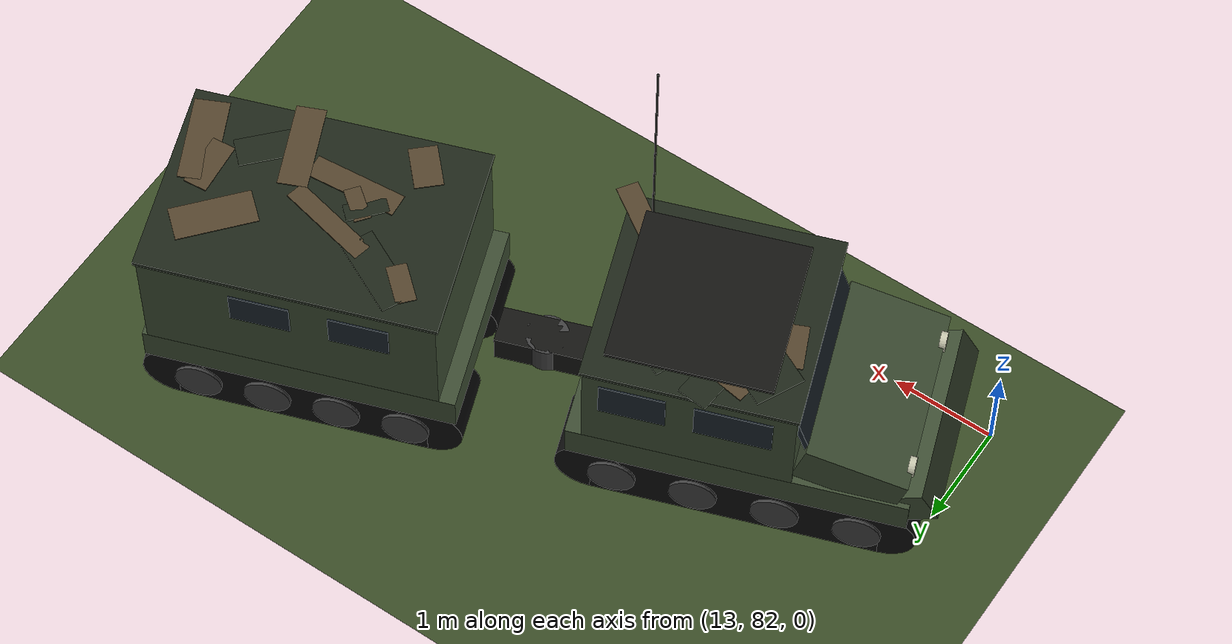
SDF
<sdf version="1.11">
 <world name="hive_base">
  <model name="ground_plane">
   <static>true</static>
   <link name="link">
    <collision name="collision">
     <geometry><plane><normal>0 0 1</normal><size>1000 1000</size></plane></geometry>
     <surface><friction><ode><mu>1.0</mu><mu2>1.0</mu2></ode></friction></surface>
    </collision>
    <visual name="visual">
     <geometry><plane><normal>0 0 1</normal><size>1000 1000</size></plane></geometry>
     <material>
      <ambient>0.23 0.3 0.15 1</ambient>
      <diffuse>0.23 0.3 0.15 1</diffuse>
      <specular>0.05 0.05 0.05 1</specular>
     </material>
    </visual>
   </link>
  </model>
  <model name="bv206_2">
   <static>true</static>
   <pose>16.657 83.844 0 0 0 -2.799</pose>
   <link name="link">
    <visual name="v1">
     <pose>2 -0.6 0.33 0 0 0</pose>
     <geometry><box><size>2.64 0.62 0.66</size></box></geometry>
     <material>
      <ambient>0.05 0.05 0.05 1</ambient>
      <diffuse>0.05 0.05 0.05 1</diffuse>
      <specular>0.05 0.05 0.05 1</specular>
     </material>
    </visual>
    <collision name="c1">
     <pose>2 -0.6 0.33 0 0 0</pose>
     <geometry><box><size>2.64 0.62 0.66</size></box></geometry>
    </collision>
    <visual name="v2">
     <pose>0.68 -0.6 0.33 1.571 0 0</pose>
     <geometry><cylinder><radius>0.33</radius><length>0.62</length></cylinder></geometry>
     <material>
      <ambient>0.05 0.05 0.05 1</ambient>
      <diffuse>0.05 0.05 0.05 1</diffuse>
      <specular>0.05 0.05 0.05 1</specular>
     </material>
    </visual>
    <collision name="c2">
     <pose>0.68 -0.6 0.33 1.571 0 0</pose>
     <geometry><cylinder><radius>0.33</radius><length>0.62</length></cylinder></geometry>
    </collision>
    <visual name="v3">
     <pose>3.32 -0.6 0.33 1.571 0 0</pose>
     <geometry><cylinder><radius>0.33</radius><length>0.62</length></cylinder></geometry>
     <material>
      <ambient>0.05 0.05 0.05 1</ambient>
      <diffuse>0.05 0.05 0.05 1</diffuse>
      <specular>0.05 0.05 0.05 1</specular>
     </material>
    </visual>
    <collision name="c3">
     <pose>3.32 -0.6 0.33 1.571 0 0</pose>
     <geometry><cylinder><radius>0.33</radius><length>0.62</length></cylinder></geometry>
    </collision>
    <visual name="v4">
     <pose>0.88 -0.92 0.3 1.571 0 0</pose>
     <geometry><cylinder><radius>0.22</radius><length>0.04</length></cylinder></geometry>
     <material>
      <ambient>0.25 0.25 0.25 1</ambient>
      <diffuse>0.25 0.25 0.25 1</diffuse>
      <specular>0.05 0.05 0.05 1</specular>
     </material>
    </visual>
    <visual name="v5">
     <pose>1.627 -0.92 0.3 1.571 0 0</pose>
     <geometry><cylinder><radius>0.22</radius><length>0.04</length></cylinder></geometry>
     <material>
      <ambient>0.25 0.25 0.25 1</ambient>
      <diffuse>0.25 0.25 0.25 1</diffuse>
      <specular>0.05 0.05 0.05 1</specular>
     </material>
    </visual>
    <visual name="v6">
     <pose>2.373 -0.92 0.3 1.571 0 0</pose>
     <geometry><cylinder><radius>0.22</radius><length>0.04</length></cylinder></geometry>
     <material>
      <ambient>0.25 0.25 0.25 1</ambient>
      <diffuse>0.25 0.25 0.25 1</diffuse>
      <specular>0.05 0.05 0.05 1</specular>
     </material>
    </visual>
    <visual name="v7">
     <pose>3.12 -0.92 0.3 1.571 0 0</pose>
     <geometry><cylinder><radius>0.22</radius><length>0.04</length></cylinder></geometry>
     <material>
      <ambient>0.25 0.25 0.25 1</ambient>
      <diffuse>0.25 0.25 0.25 1</diffuse>
      <specular>0.05 0.05 0.05 1</specular>
     </material>
    </visual>
    <visual name="v8">
     <pose>0.68 -0.6 0.665 0 0 0</pose>
     <geometry><box><size>0.06 0.64 0.02</size></box></geometry>
     <material>
      <ambient>0.25 0.25 0.25 1</ambient>
      <diffuse>0.25 0.25 0.25 1</diffuse>
      <specular>0.05 0.05 0.05 1</specular>
     </material>
     <cast_shadows>false</cast_shadows>
    </visual>
    <visual name="v9">
     <pose>0.973 -0.6 0.665 0 0 0</pose>
     <geometry><box><size>0.06 0.64 0.02</size></box></geometry>
     <material>
      <ambient>0.25 0.25 0.25 1</ambient>
      <diffuse>0.25 0.25 0.25 1</diffuse>
      <specular>0.05 0.05 0.05 1</specular>
     </material>
     <cast_shadows>false</cast_shadows>
    </visual>
    <visual name="v10">
     <pose>1.267 -0.6 0.665 0 0 0</pose>
     <geometry><box><size>0.06 0.64 0.02</size></box></geometry>
     <material>
      <ambient>0.25 0.25 0.25 1</ambient>
      <diffuse>0.25 0.25 0.25 1</diffuse>
      <specular>0.05 0.05 0.05 1</specular>
     </material>
     <cast_shadows>false</cast_shadows>
    </visual>
    <visual name="v11">
     <pose>1.56 -0.6 0.665 0 0 0</pose>
     <geometry><box><size>0.06 0.64 0.02</size></box></geometry>
     <material>
      <ambient>0.25 0.25 0.25 1</ambient>
      <diffuse>0.25 0.25 0.25 1</diffuse>
      <specular>0.05 0.05 0.05 1</specular>
     </material>
     <cast_shadows>false</cast_shadows>
    </visual>
    <visual name="v12">
     <pose>1.853 -0.6 0.665 0 0 0</pose>
     <geometry><box><size>0.06 0.64 0.02</size></box></geometry>
     <material>
      <ambient>0.25 0.25 0.25 1</ambient>
      <diffuse>0.25 0.25 0.25 1</diffuse>
      <specular>0.05 0.05 0.05 1</specular>
     </material>
     <cast_shadows>false</cast_shadows>
    </visual>
    <visual name="v13">
     <pose>2.147 -0.6 0.665 0 0 0</pose>
     <geometry><box><size>0.06 0.64 0.02</size></box></geometry>
     <material>
      <ambient>0.25 0.25 0.25 1</ambient>
      <diffuse>0.25 0.25 0.25 1</diffuse>
      <specular>0.05 0.05 0.05 1</specular>
     </material>
     <cast_shadows>false</cast_shadows>
    </visual>
    <visual name="v14">
     <pose>2.44 -0.6 0.665 0 0 0</pose>
     <geometry><box><size>0.06 0.64 0.02</size></box></geometry>
     <material>
      <ambient>0.25 0.25 0.25 1</ambient>
      <diffuse>0.25 0.25 0.25 1</diffuse>
      <specular>0.05 0.05 0.05 1</specular>
     </material>
     <cast_shadows>false</cast_shadows>
    </visual>
    <visual name="v15">
     <pose>2.733 -0.6 0.665 0 0 0</pose>
     <geometry><box><size>0.06 0.64 0.02</size></box></geometry>
     <material>
      <ambient>0.25 0.25 0.25 1</ambient>
      <diffuse>0.25 0.25 0.25 1</diffuse>
      <specular>0.05 0.05 0.05 1</specular>
     </material>
     <cast_shadows>false</cast_shadows>
    </visual>
    <visual name="v16">
     <pose>3.027 -0.6 0.665 0 0 0</pose>
     <geometry><box><size>0.06 0.64 0.02</size></box></geometry>
     <material>
      <ambient>0.25 0.25 0.25 1</ambient>
      <diffuse>0.25 0.25 0.25 1</diffuse>
      <specular>0.05 0.05 0.05 1</specular>
     </material>
     <cast_shadows>false</cast_shadows>
    </visual>
    <visual name="v17">
     <pose>3.32 -0.6 0.665 0 0 0</pose>
     <geometry><box><size>0.06 0.64 0.02</size></box></geometry>
     <material>
      <ambient>0.25 0.25 0.25 1</ambient>
      <diffuse>0.25 0.25 0.25 1</diffuse>
      <specular>0.05 0.05 0.05 1</specular>
     </material>
     <cast_shadows>false</cast_shadows>
    </visual>
    <visual name="v18">
     <pose>2 0.6 0.33 0 0 0</pose>
     <geometry><box><size>2.64 0.62 0.66</size></box></geometry>
     <material>
      <ambient>0.05 0.05 0.05 1</ambient>
      <diffuse>0.05 0.05 0.05 1</diffuse>
      <specular>0.05 0.05 0.05 1</specular>
     </material>
    </visual>
    <collision name="c18">
     <pose>2 0.6 0.33 0 0 0</pose>
     <geometry><box><size>2.64 0.62 0.66</size></box></geometry>
    </collision>
    <visual name="v19">
     <pose>0.68 0.6 0.33 1.571 0 0</pose>
     <geometry><cylinder><radius>0.33</radius><length>0.62</length></cylinder></geometry>
     <material>
      <ambient>0.05 0.05 0.05 1</ambient>
      <diffuse>0.05 0.05 0.05 1</diffuse>
      <specular>0.05 0.05 0.05 1</specular>
     </material>
    </visual>
    <collision name="c19">
     <pose>0.68 0.6 0.33 1.571 0 0</pose>
     <geometry><cylinder><radius>0.33</radius><length>0.62</length></cylinder></geometry>
    </collision>
    <visual name="v20">
     <pose>3.32 0.6 0.33 1.571 0 0</pose>
     <geometry><cylinder><radius>0.33</radius><length>0.62</length></cylinder></geometry>
     <material>
      <ambient>0.05 0.05 0.05 1</ambient>
      <diffuse>0.05 0.05 0.05 1</diffuse>
      <specular>0.05 0.05 0.05 1</specular>
     </material>
    </visual>
    <collision name="c20">
     <pose>3.32 0.6 0.33 1.571 0 0</pose>
     <geometry><cylinder><radius>0.33</radius><length>0.62</length></cylinder></geometry>
    </collision>
    <visual name="v21">
     <pose>0.88 0.92 0.3 1.571 0 0</pose>
     <geometry><cylinder><radius>0.22</radius><length>0.04</length></cylinder></geometry>
     <material>
      <ambient>0.25 0.25 0.25 1</ambient>
      <diffuse>0.25 0.25 0.25 1</diffuse>
      <specular>0.05 0.05 0.05 1</specular>
     </material>
    </visual>
    <visual name="v22">
     <pose>1.627 0.92 0.3 1.571 0 0</pose>
     <geometry><cylinder><radius>0.22</radius><length>0.04</length></cylinder></geometry>
     <material>
      <ambient>0.25 0.25 0.25 1</ambient>
      <diffuse>0.25 0.25 0.25 1</diffuse>
      <specular>0.05 0.05 0.05 1</specular>
     </material>
    </visual>
    <visual name="v23">
     <pose>2.373 0.92 0.3 1.571 0 0</pose>
     <geometry><cylinder><radius>0.22</radius><length>0.04</length></cylinder></geometry>
     <material>
      <ambient>0.25 0.25 0.25 1</ambient>
      <diffuse>0.25 0.25 0.25 1</diffuse>
      <specular>0.05 0.05 0.05 1</specular>
     </material>
    </visual>
    <visual name="v24">
     <pose>3.12 0.92 0.3 1.571 0 0</pose>
     <geometry><cylinder><radius>0.22</radius><length>0.04</length></cylinder></geometry>
     <material>
      <ambient>0.25 0.25 0.25 1</ambient>
      <diffuse>0.25 0.25 0.25 1</diffuse>
      <specular>0.05 0.05 0.05 1</specular>
     </material>
    </visual>
    <visual name="v25">
     <pose>0.68 0.6 0.665 0 0 0</pose>
     <geometry><box><size>0.06 0.64 0.02</size></box></geometry>
     <material>
      <ambient>0.25 0.25 0.25 1</ambient>
      <diffuse>0.25 0.25 0.25 1</diffuse>
      <specular>0.05 0.05 0.05 1</specular>
     </material>
     <cast_shadows>false</cast_shadows>
    </visual>
    <visual name="v26">
     <pose>0.973 0.6 0.665 0 0 0</pose>
     <geometry><box><size>0.06 0.64 0.02</size></box></geometry>
     <material>
      <ambient>0.25 0.25 0.25 1</ambient>
      <diffuse>0.25 0.25 0.25 1</diffuse>
      <specular>0.05 0.05 0.05 1</specular>
     </material>
     <cast_shadows>false</cast_shadows>
    </visual>
    <visual name="v27">
     <pose>1.267 0.6 0.665 0 0 0</pose>
     <geometry><box><size>0.06 0.64 0.02</size></box></geometry>
     <material>
      <ambient>0.25 0.25 0.25 1</ambient>
      <diffuse>0.25 0.25 0.25 1</diffuse>
      <specular>0.05 0.05 0.05 1</specular>
     </material>
     <cast_shadows>false</cast_shadows>
    </visual>
    <visual name="v28">
     <pose>1.56 0.6 0.665 0 0 0</pose>
     <geometry><box><size>0.06 0.64 0.02</size></box></geometry>
     <material>
      <ambient>0.25 0.25 0.25 1</ambient>
      <diffuse>0.25 0.25 0.25 1</diffuse>
      <specular>0.05 0.05 0.05 1</specular>
     </material>
     <cast_shadows>false</cast_shadows>
    </visual>
    <visual name="v29">
     <pose>1.853 0.6 0.665 0 0 0</pose>
     <geometry><box><size>0.06 0.64 0.02</size></box></geometry>
     <material>
      <ambient>0.25 0.25 0.25 1</ambient>
      <diffuse>0.25 0.25 0.25 1</diffuse>
      <specular>0.05 0.05 0.05 1</specular>
     </material>
     <cast_shadows>false</cast_shadows>
    </visual>
    <visual name="v30">
     <pose>2.147 0.6 0.665 0 0 0</pose>
     <geometry><box><size>0.06 0.64 0.02</size></box></geometry>
     <material>
      <ambient>0.25 0.25 0.25 1</ambient>
      <diffuse>0.25 0.25 0.25 1</diffuse>
      <specular>0.05 0.05 0.05 1</specular>
     </material>
     <cast_shadows>false</cast_shadows>
    </visual>
    <visual name="v31">
     <pose>2.44 0.6 0.665 0 0 0</pose>
     <geometry><box><size>0.06 0.64 0.02</size></box></geometry>
     <material>
      <ambient>0.25 0.25 0.25 1</ambient>
      <diffuse>0.25 0.25 0.25 1</diffuse>
      <specular>0.05 0.05 0.05 1</specular>
     </material>
     <cast_shadows>false</cast_shadows>
    </visual>
    <visual name="v32">
     <pose>2.733 0.6 0.665 0 0 0</pose>
     <geometry><box><size>0.06 0.64 0.02</size></box></geometry>
     <material>
      <ambient>0.25 0.25 0.25 1</ambient>
      <diffuse>0.25 0.25 0.25 1</diffuse>
      <specular>0.05 0.05 0.05 1</specular>
     </material>
     <cast_shadows>false</cast_shadows>
    </visual>
    <visual name="v33">
     <pose>3.027 0.6 0.665 0 0 0</pose>
     <geometry><box><size>0.06 0.64 0.02</size></box></geometry>
     <material>
      <ambient>0.25 0.25 0.25 1</ambient>
      <diffuse>0.25 0.25 0.25 1</diffuse>
      <specular>0.05 0.05 0.05 1</specular>
     </material>
     <cast_shadows>false</cast_shadows>
    </visual>
    <visual name="v34">
     <pose>3.32 0.6 0.665 0 0 0</pose>
     <geometry><box><size>0.06 0.64 0.02</size></box></geometry>
     <material>
      <ambient>0.25 0.25 0.25 1</ambient>
      <diffuse>0.25 0.25 0.25 1</diffuse>
      <specular>0.05 0.05 0.05 1</specular>
     </material>
     <cast_shadows>false</cast_shadows>
    </visual>
    <visual name="v35">
     <pose>2 0 0.76 0 0 0</pose>
     <geometry><box><size>3.1 1.85 0.35</size></box></geometry>
     <material>
      <ambient>0.24 0.3 0.2 1</ambient>
      <diffuse>0.24 0.3 0.2 1</diffuse>
      <specular>0.05 0.05 0.05 1</specular>
     </material>
    </visual>
    <collision name="c35">
     <pose>2 0 0.76 0 0 0</pose>
     <geometry><box><size>3.1 1.85 0.35</size></box></geometry>
    </collision>
    <visual name="v36">
     <pose>3 0 1.13 0 0.25 0</pose>
     <geometry><box><size>0.95 1.8 0.45</size></box></geometry>
     <material>
      <ambient>0.24 0.3 0.2 1</ambient>
      <diffuse>0.24 0.3 0.2 1</diffuse>
      <specular>0.05 0.05 0.05 1</specular>
     </material>
    </visual>
    <collision name="c36">
     <pose>3 0 1.13 0 0.25 0</pose>
     <geometry><box><size>0.95 1.8 0.45</size></box></geometry>
    </collision>
    <visual name="v37">
     <pose>3.55 0 0.86 0 -0.5 0</pose>
     <geometry><box><size>0.4 1.75 0.35</size></box></geometry>
     <material>
      <ambient>0.24 0.3 0.2 1</ambient>
      <diffuse>0.24 0.3 0.2 1</diffuse>
      <specular>0.05 0.05 0.05 1</specular>
     </material>
    </visual>
    <visual name="v38">
     <pose>1.55 0 1.455 0 0 0</pose>
     <geometry><box><size>1.9 1.85 1.05</size></box></geometry>
     <material>
      <ambient>0.24 0.3 0.2 1</ambient>
      <diffuse>0.24 0.3 0.2 1</diffuse>
      <specular>0.05 0.05 0.05 1</specular>
     </material>
    </visual>
    <collision name="c38">
     <pose>1.55 0 1.455 0 0 0</pose>
     <geometry><box><size>1.9 1.85 1.05</size></box></geometry>
    </collision>
    <visual name="v39">
     <pose>1.55 0 2 0 0 0</pose>
     <geometry><box><size>1.95 1.87 0.05</size></box></geometry>
     <material>
      <ambient>0.12 0.15 0.1 1</ambient>
      <diffuse>0.12 0.15 0.1 1</diffuse>
      <specular>0.05 0.05 0.05 1</specular>
     </material>
    </visual>
    <visual name="v40">
     <pose>2.52 0 1.635 0 -0.3 0</pose>
     <geometry><box><size>0.05 1.65 0.5</size></box></geometry>
     <material>
      <ambient>0.1 0.14 0.17 1</ambient>
      <diffuse>0.1 0.14 0.17 1</diffuse>
      <specular>0.05 0.05 0.05 1</specular>
     </material>
    </visual>
    <visual name="v41">
     <pose>1.95 -0.93 1.655 0 0 0</pose>
     <geometry><box><size>0.7 0.02 0.4</size></box></geometry>
     <material>
      <ambient>0.1 0.14 0.17 1</ambient>
      <diffuse>0.1 0.14 0.17 1</diffuse>
      <specular>0.05 0.05 0.05 1</specular>
     </material>
    </visual>
    <visual name="v42">
     <pose>1.05 -0.93 1.655 0 0 0</pose>
     <geometry><box><size>0.6 0.02 0.4</size></box></geometry>
     <material>
      <ambient>0.1 0.14 0.17 1</ambient>
      <diffuse>0.1 0.14 0.17 1</diffuse>
      <specular>0.05 0.05 0.05 1</specular>
     </material>
    </visual>
    <visual name="v43">
     <pose>1.95 0.93 1.655 0 0 0</pose>
     <geometry><box><size>0.7 0.02 0.4</size></box></geometry>
     <material>
      <ambient>0.1 0.14 0.17 1</ambient>
      <diffuse>0.1 0.14 0.17 1</diffuse>
      <specular>0.05 0.05 0.05 1</specular>
     </material>
    </visual>
    <visual name="v44">
     <pose>1.05 0.93 1.655 0 0 0</pose>
     <geometry><box><size>0.6 0.02 0.4</size></box></geometry>
     <material>
      <ambient>0.1 0.14 0.17 1</ambient>
      <diffuse>0.1 0.14 0.17 1</diffuse>
      <specular>0.05 0.05 0.05 1</specular>
     </material>
    </visual>
    <visual name="v45">
     <pose>3.5 -0.65 1.21 0 1.571 0</pose>
     <geometry><cylinder><radius>0.09</radius><length>0.06</length></cylinder></geometry>
     <material>
      <ambient>0.8 0.8 0.7 1</ambient>
      <diffuse>0.8 0.8 0.7 1</diffuse>
      <specular>0.05 0.05 0.05 1</specular>
     </material>
    </visual>
    <visual name="v46">
     <pose>3.5 0.65 1.21 0 1.571 0</pose>
     <geometry><cylinder><radius>0.09</radius><length>0.06</length></cylinder></geometry>
     <material>
      <ambient>0.8 0.8 0.7 1</ambient>
      <diffuse>0.8 0.8 0.7 1</diffuse>
      <specular>0.05 0.05 0.05 1</specular>
     </material>
    </visual>
    <visual name="v47">
     <pose>1.5 0 2.1 0 0 0</pose>
     <geometry><box><size>1.5 1.5 0.04</size></box></geometry>
     <material>
      <ambient>0.08 0.08 0.07 1</ambient>
      <diffuse>0.08 0.08 0.07 1</diffuse>
      <specular>0.05 0.05 0.05 1</specular>
     </material>
    </visual>
    <visual name="v48">
     <pose>0.8 0.8 3.08 0 0 0</pose>
     <geometry><cylinder><radius>0.01</radius><length>2.2</length></cylinder></geometry>
     <material>
      <ambient>0.08 0.08 0.07 1</ambient>
      <diffuse>0.08 0.08 0.07 1</diffuse>
      <specular>0.05 0.05 0.05 1</specular>
     </material>
    </visual>
    <visual name="v49">
     <pose>1.78 -0.531 2.03 0 0 2.647</pose>
     <geometry><box><size>0.661 0.377 0.01</size></box></geometry>
     <material>
      <ambient>0.33 0.27 0.18 1</ambient>
      <diffuse>0.33 0.27 0.18 1</diffuse>
      <specular>0.05 0.05 0.05 1</specular>
     </material>
     <cast_shadows>false</cast_shadows>
    </visual>
    <visual name="v50">
     <pose>1.908 -0.076 2.03 0 0 2.095</pose>
     <geometry><box><size>0.431 0.387 0.01</size></box></geometry>
     <material>
      <ambient>0.33 0.27 0.18 1</ambient>
      <diffuse>0.33 0.27 0.18 1</diffuse>
      <specular>0.05 0.05 0.05 1</specular>
     </material>
     <cast_shadows>false</cast_shadows>
    </visual>
    <visual name="v51">
     <pose>1.788 -0.392 2.03 0 0 0.397</pose>
     <geometry><box><size>0.459 0.204 0.01</size></box></geometry>
     <material>
      <ambient>0.12 0.15 0.1 1</ambient>
      <diffuse>0.12 0.15 0.1 1</diffuse>
      <specular>0.05 0.05 0.05 1</specular>
     </material>
     <cast_shadows>false</cast_shadows>
    </visual>
    <visual name="v52">
     <pose>0.758 0.678 2.03 0 0 2.209</pose>
     <geometry><box><size>0.829 0.207 0.01</size></box></geometry>
     <material>
      <ambient>0.33 0.27 0.18 1</ambient>
      <diffuse>0.33 0.27 0.18 1</diffuse>
      <specular>0.05 0.05 0.05 1</specular>
     </material>
     <cast_shadows>false</cast_shadows>
    </visual>
    <visual name="v53">
     <pose>1.327 -0.399 2.03 0 0 0.809</pose>
     <geometry><box><size>0.703 0.39 0.01</size></box></geometry>
     <material>
      <ambient>0.12 0.15 0.1 1</ambient>
      <diffuse>0.12 0.15 0.1 1</diffuse>
      <specular>0.05 0.05 0.05 1</specular>
     </material>
     <cast_shadows>false</cast_shadows>
    </visual>
    <visual name="v54">
     <pose>1.224 -0.47 2.03 0 0 0.138</pose>
     <geometry><box><size>0.545 0.353 0.01</size></box></geometry>
     <material>
      <ambient>0.33 0.27 0.18 1</ambient>
      <diffuse>0.33 0.27 0.18 1</diffuse>
      <specular>0.05 0.05 0.05 1</specular>
     </material>
     <cast_shadows>false</cast_shadows>
    </visual>
    <visual name="v55">
     <pose>1.841 0.081 2.03 0 0 3.034</pose>
     <geometry><box><size>0.698 0.341 0.01</size></box></geometry>
     <material>
      <ambient>0.12 0.15 0.1 1</ambient>
      <diffuse>0.12 0.15 0.1 1</diffuse>
      <specular>0.05 0.05 0.05 1</specular>
     </material>
     <cast_shadows>false</cast_shadows>
    </visual>
    <visual name="v56">
     <pose>1.708 -0.659 2.03 0 0 1.143</pose>
     <geometry><box><size>0.642 0.296 0.01</size></box></geometry>
     <material>
      <ambient>0.12 0.15 0.1 1</ambient>
      <diffuse>0.12 0.15 0.1 1</diffuse>
      <specular>0.05 0.05 0.05 1</specular>
     </material>
     <cast_shadows>false</cast_shadows>
    </visual>
    <visual name="v57">
     <pose>2.253 -0.217 2.03 0 0 1.653</pose>
     <geometry><box><size>0.431 0.323 0.01</size></box></geometry>
     <material>
      <ambient>0.33 0.27 0.18 1</ambient>
      <diffuse>0.33 0.27 0.18 1</diffuse>
      <specular>0.05 0.05 0.05 1</specular>
     </material>
     <cast_shadows>false</cast_shadows>
    </visual>
    <visual name="v58">
     <pose>2.176 -0.559 2.03 0 0 0.774</pose>
     <geometry><box><size>0.473 0.36 0.01</size></box></geometry>
     <material>
      <ambient>0.12 0.15 0.1 1</ambient>
      <diffuse>0.12 0.15 0.1 1</diffuse>
      <specular>0.05 0.05 0.05 1</specular>
     </material>
     <cast_shadows>false</cast_shadows>
    </visual>
    <visual name="v59">
     <pose>0.05 0 0.76 0 0 0</pose>
     <geometry><box><size>0.9 0.35 0.3</size></box></geometry>
     <material>
      <ambient>0.08 0.08 0.07 1</ambient>
      <diffuse>0.08 0.08 0.07 1</diffuse>
      <specular>0.05 0.05 0.05 1</specular>
     </material>
    </visual>
    <visual name="v60">
     <pose>0.05 0 0.76 0 0 0</pose>
     <geometry><cylinder><radius>0.2</radius><length>0.3</length></cylinder></geometry>
     <material>
      <ambient>0.25 0.25 0.25 1</ambient>
      <diffuse>0.25 0.25 0.25 1</diffuse>
      <specular>0.05 0.05 0.05 1</specular>
     </material>
    </visual>
    <visual name="v61">
     <pose>-2 -0.6 0.33 0 0 0</pose>
     <geometry><box><size>2.34 0.62 0.66</size></box></geometry>
     <material>
      <ambient>0.05 0.05 0.05 1</ambient>
      <diffuse>0.05 0.05 0.05 1</diffuse>
      <specular>0.05 0.05 0.05 1</specular>
     </material>
    </visual>
    <collision name="c61">
     <pose>-2 -0.6 0.33 0 0 0</pose>
     <geometry><box><size>2.34 0.62 0.66</size></box></geometry>
    </collision>
    <visual name="v62">
     <pose>-3.17 -0.6 0.33 1.571 0 0</pose>
     <geometry><cylinder><radius>0.33</radius><length>0.62</length></cylinder></geometry>
     <material>
      <ambient>0.05 0.05 0.05 1</ambient>
      <diffuse>0.05 0.05 0.05 1</diffuse>
      <specular>0.05 0.05 0.05 1</specular>
     </material>
    </visual>
    <collision name="c62">
     <pose>-3.17 -0.6 0.33 1.571 0 0</pose>
     <geometry><cylinder><radius>0.33</radius><length>0.62</length></cylinder></geometry>
    </collision>
    <visual name="v63">
     <pose>-0.83 -0.6 0.33 1.571 0 0</pose>
     <geometry><cylinder><radius>0.33</radius><length>0.62</length></cylinder></geometry>
     <material>
      <ambient>0.05 0.05 0.05 1</ambient>
      <diffuse>0.05 0.05 0.05 1</diffuse>
      <specular>0.05 0.05 0.05 1</specular>
     </material>
    </visual>
    <collision name="c63">
     <pose>-0.83 -0.6 0.33 1.571 0 0</pose>
     <geometry><cylinder><radius>0.33</radius><length>0.62</length></cylinder></geometry>
    </collision>
    <visual name="v64">
     <pose>-2.97 -0.92 0.3 1.571 0 0</pose>
     <geometry><cylinder><radius>0.22</radius><length>0.04</length></cylinder></geometry>
     <material>
      <ambient>0.25 0.25 0.25 1</ambient>
      <diffuse>0.25 0.25 0.25 1</diffuse>
      <specular>0.05 0.05 0.05 1</specular>
     </material>
    </visual>
    <visual name="v65">
     <pose>-2.323 -0.92 0.3 1.571 0 0</pose>
     <geometry><cylinder><radius>0.22</radius><length>0.04</length></cylinder></geometry>
     <material>
      <ambient>0.25 0.25 0.25 1</ambient>
      <diffuse>0.25 0.25 0.25 1</diffuse>
      <specular>0.05 0.05 0.05 1</specular>
     </material>
    </visual>
    <visual name="v66">
     <pose>-1.677 -0.92 0.3 1.571 0 0</pose>
     <geometry><cylinder><radius>0.22</radius><length>0.04</length></cylinder></geometry>
     <material>
      <ambient>0.25 0.25 0.25 1</ambient>
      <diffuse>0.25 0.25 0.25 1</diffuse>
      <specular>0.05 0.05 0.05 1</specular>
     </material>
    </visual>
    <visual name="v67">
     <pose>-1.03 -0.92 0.3 1.571 0 0</pose>
     <geometry><cylinder><radius>0.22</radius><length>0.04</length></cylinder></geometry>
     <material>
      <ambient>0.25 0.25 0.25 1</ambient>
      <diffuse>0.25 0.25 0.25 1</diffuse>
      <specular>0.05 0.05 0.05 1</specular>
     </material>
    </visual>
    <visual name="v68">
     <pose>-3.17 -0.6 0.665 0 0 0</pose>
     <geometry><box><size>0.06 0.64 0.02</size></box></geometry>
     <material>
      <ambient>0.25 0.25 0.25 1</ambient>
      <diffuse>0.25 0.25 0.25 1</diffuse>
      <specular>0.05 0.05 0.05 1</specular>
     </material>
     <cast_shadows>false</cast_shadows>
    </visual>
    <visual name="v69">
     <pose>-2.91 -0.6 0.665 0 0 0</pose>
     <geometry><box><size>0.06 0.64 0.02</size></box></geometry>
     <material>
      <ambient>0.25 0.25 0.25 1</ambient>
      <diffuse>0.25 0.25 0.25 1</diffuse>
      <specular>0.05 0.05 0.05 1</specular>
     </material>
     <cast_shadows>false</cast_shadows>
    </visual>
    <visual name="v70">
     <pose>-2.65 -0.6 0.665 0 0 0</pose>
     <geometry><box><size>0.06 0.64 0.02</size></box></geometry>
     <material>
      <ambient>0.25 0.25 0.25 1</ambient>
      <diffuse>0.25 0.25 0.25 1</diffuse>
      <specular>0.05 0.05 0.05 1</specular>
     </material>
     <cast_shadows>false</cast_shadows>
    </visual>
    <visual name="v71">
     <pose>-2.39 -0.6 0.665 0 0 0</pose>
     <geometry><box><size>0.06 0.64 0.02</size></box></geometry>
     <material>
      <ambient>0.25 0.25 0.25 1</ambient>
      <diffuse>0.25 0.25 0.25 1</diffuse>
      <specular>0.05 0.05 0.05 1</specular>
     </material>
     <cast_shadows>false</cast_shadows>
    </visual>
    <visual name="v72">
     <pose>-2.13 -0.6 0.665 0 0 0</pose>
     <geometry><box><size>0.06 0.64 0.02</size></box></geometry>
     <material>
      <ambient>0.25 0.25 0.25 1</ambient>
      <diffuse>0.25 0.25 0.25 1</diffuse>
      <specular>0.05 0.05 0.05 1</specular>
     </material>
     <cast_shadows>false</cast_shadows>
    </visual>
    <visual name="v73">
     <pose>-1.87 -0.6 0.665 0 0 0</pose>
     <geometry><box><size>0.06 0.64 0.02</size></box></geometry>
     <material>
      <ambient>0.25 0.25 0.25 1</ambient>
      <diffuse>0.25 0.25 0.25 1</diffuse>
      <specular>0.05 0.05 0.05 1</specular>
     </material>
     <cast_shadows>false</cast_shadows>
    </visual>
    <visual name="v74">
     <pose>-1.61 -0.6 0.665 0 0 0</pose>
     <geometry><box><size>0.06 0.64 0.02</size></box></geometry>
     <material>
      <ambient>0.25 0.25 0.25 1</ambient>
      <diffuse>0.25 0.25 0.25 1</diffuse>
      <specular>0.05 0.05 0.05 1</specular>
     </material>
     <cast_shadows>false</cast_shadows>
    </visual>
    <visual name="v75">
     <pose>-1.35 -0.6 0.665 0 0 0</pose>
     <geometry><box><size>0.06 0.64 0.02</size></box></geometry>
     <material>
      <ambient>0.25 0.25 0.25 1</ambient>
      <diffuse>0.25 0.25 0.25 1</diffuse>
      <specular>0.05 0.05 0.05 1</specular>
     </material>
     <cast_shadows>false</cast_shadows>
    </visual>
    <visual name="v76">
     <pose>-1.09 -0.6 0.665 0 0 0</pose>
     <geometry><box><size>0.06 0.64 0.02</size></box></geometry>
     <material>
      <ambient>0.25 0.25 0.25 1</ambient>
      <diffuse>0.25 0.25 0.25 1</diffuse>
      <specular>0.05 0.05 0.05 1</specular>
     </material>
     <cast_shadows>false</cast_shadows>
    </visual>
    <visual name="v77">
     <pose>-0.83 -0.6 0.665 0 0 0</pose>
     <geometry><box><size>0.06 0.64 0.02</size></box></geometry>
     <material>
      <ambient>0.25 0.25 0.25 1</ambient>
      <diffuse>0.25 0.25 0.25 1</diffuse>
      <specular>0.05 0.05 0.05 1</specular>
     </material>
     <cast_shadows>false</cast_shadows>
    </visual>
    <visual name="v78">
     <pose>-2 0.6 0.33 0 0 0</pose>
     <geometry><box><size>2.34 0.62 0.66</size></box></geometry>
     <material>
      <ambient>0.05 0.05 0.05 1</ambient>
      <diffuse>0.05 0.05 0.05 1</diffuse>
      <specular>0.05 0.05 0.05 1</specular>
     </material>
    </visual>
    <collision name="c78">
     <pose>-2 0.6 0.33 0 0 0</pose>
     <geometry><box><size>2.34 0.62 0.66</size></box></geometry>
    </collision>
    <visual name="v79">
     <pose>-3.17 0.6 0.33 1.571 0 0</pose>
     <geometry><cylinder><radius>0.33</radius><length>0.62</length></cylinder></geometry>
     <material>
      <ambient>0.05 0.05 0.05 1</ambient>
      <diffuse>0.05 0.05 0.05 1</diffuse>
      <specular>0.05 0.05 0.05 1</specular>
     </material>
    </visual>
    <collision name="c79">
     <pose>-3.17 0.6 0.33 1.571 0 0</pose>
     <geometry><cylinder><radius>0.33</radius><length>0.62</length></cylinder></geometry>
    </collision>
    <visual name="v80">
     <pose>-0.83 0.6 0.33 1.571 0 0</pose>
     <geometry><cylinder><radius>0.33</radius><length>0.62</length></cylinder></geometry>
     <material>
      <ambient>0.05 0.05 0.05 1</ambient>
      <diffuse>0.05 0.05 0.05 1</diffuse>
      <specular>0.05 0.05 0.05 1</specular>
     </material>
    </visual>
    <collision name="c80">
     <pose>-0.83 0.6 0.33 1.571 0 0</pose>
     <geometry><cylinder><radius>0.33</radius><length>0.62</length></cylinder></geometry>
    </collision>
    <visual name="v81">
     <pose>-2.97 0.92 0.3 1.571 0 0</pose>
     <geometry><cylinder><radius>0.22</radius><length>0.04</length></cylinder></geometry>
     <material>
      <ambient>0.25 0.25 0.25 1</ambient>
      <diffuse>0.25 0.25 0.25 1</diffuse>
      <specular>0.05 0.05 0.05 1</specular>
     </material>
    </visual>
    <visual name="v82">
     <pose>-2.323 0.92 0.3 1.571 0 0</pose>
     <geometry><cylinder><radius>0.22</radius><length>0.04</length></cylinder></geometry>
     <material>
      <ambient>0.25 0.25 0.25 1</ambient>
      <diffuse>0.25 0.25 0.25 1</diffuse>
      <specular>0.05 0.05 0.05 1</specular>
     </material>
    </visual>
    <visual name="v83">
     <pose>-1.677 0.92 0.3 1.571 0 0</pose>
     <geometry><cylinder><radius>0.22</radius><length>0.04</length></cylinder></geometry>
     <material>
      <ambient>0.25 0.25 0.25 1</ambient>
      <diffuse>0.25 0.25 0.25 1</diffuse>
      <specular>0.05 0.05 0.05 1</specular>
     </material>
    </visual>
    <visual name="v84">
     <pose>-1.03 0.92 0.3 1.571 0 0</pose>
     <geometry><cylinder><radius>0.22</radius><length>0.04</length></cylinder></geometry>
     <material>
      <ambient>0.25 0.25 0.25 1</ambient>
      <diffuse>0.25 0.25 0.25 1</diffuse>
      <specular>0.05 0.05 0.05 1</specular>
     </material>
    </visual>
    <visual name="v85">
     <pose>-3.17 0.6 0.665 0 0 0</pose>
     <geometry><box><size>0.06 0.64 0.02</size></box></geometry>
     <material>
      <ambient>0.25 0.25 0.25 1</ambient>
      <diffuse>0.25 0.25 0.25 1</diffuse>
      <specular>0.05 0.05 0.05 1</specular>
     </material>
     <cast_shadows>false</cast_shadows>
    </visual>
    <visual name="v86">
     <pose>-2.91 0.6 0.665 0 0 0</pose>
     <geometry><box><size>0.06 0.64 0.02</size></box></geometry>
     <material>
      <ambient>0.25 0.25 0.25 1</ambient>
      <diffuse>0.25 0.25 0.25 1</diffuse>
      <specular>0.05 0.05 0.05 1</specular>
     </material>
     <cast_shadows>false</cast_shadows>
    </visual>
    <visual name="v87">
     <pose>-2.65 0.6 0.665 0 0 0</pose>
     <geometry><box><size>0.06 0.64 0.02</size></box></geometry>
     <material>
      <ambient>0.25 0.25 0.25 1</ambient>
      <diffuse>0.25 0.25 0.25 1</diffuse>
      <specular>0.05 0.05 0.05 1</specular>
     </material>
     <cast_shadows>false</cast_shadows>
    </visual>
    <visual name="v88">
     <pose>-2.39 0.6 0.665 0 0 0</pose>
     <geometry><box><size>0.06 0.64 0.02</size></box></geometry>
     <material>
      <ambient>0.25 0.25 0.25 1</ambient>
      <diffuse>0.25 0.25 0.25 1</diffuse>
      <specular>0.05 0.05 0.05 1</specular>
     </material>
     <cast_shadows>false</cast_shadows>
    </visual>
    <visual name="v89">
     <pose>-2.13 0.6 0.665 0 0 0</pose>
     <geometry><box><size>0.06 0.64 0.02</size></box></geometry>
     <material>
      <ambient>0.25 0.25 0.25 1</ambient>
      <diffuse>0.25 0.25 0.25 1</diffuse>
      <specular>0.05 0.05 0.05 1</specular>
     </material>
     <cast_shadows>false</cast_shadows>
    </visual>
    <visual name="v90">
     <pose>-1.87 0.6 0.665 0 0 0</pose>
     <geometry><box><size>0.06 0.64 0.02</size></box></geometry>
     <material>
      <ambient>0.25 0.25 0.25 1</ambient>
      <diffuse>0.25 0.25 0.25 1</diffuse>
      <specular>0.05 0.05 0.05 1</specular>
     </material>
     <cast_shadows>false</cast_shadows>
    </visual>
    <visual name="v91">
     <pose>-1.61 0.6 0.665 0 0 0</pose>
     <geometry><box><size>0.06 0.64 0.02</size></box></geometry>
     <material>
      <ambient>0.25 0.25 0.25 1</ambient>
      <diffuse>0.25 0.25 0.25 1</diffuse>
      <specular>0.05 0.05 0.05 1</specular>
     </material>
     <cast_shadows>false</cast_shadows>
    </visual>
    <visual name="v92">
     <pose>-1.35 0.6 0.665 0 0 0</pose>
     <geometry><box><size>0.06 0.64 0.02</size></box></geometry>
     <material>
      <ambient>0.25 0.25 0.25 1</ambient>
      <diffuse>0.25 0.25 0.25 1</diffuse>
      <specular>0.05 0.05 0.05 1</specular>
     </material>
     <cast_shadows>false</cast_shadows>
    </visual>
    <visual name="v93">
     <pose>-1.09 0.6 0.665 0 0 0</pose>
     <geometry><box><size>0.06 0.64 0.02</size></box></geometry>
     <material>
      <ambient>0.25 0.25 0.25 1</ambient>
      <diffuse>0.25 0.25 0.25 1</diffuse>
      <specular>0.05 0.05 0.05 1</specular>
     </material>
     <cast_shadows>false</cast_shadows>
    </visual>
    <visual name="v94">
     <pose>-0.83 0.6 0.665 0 0 0</pose>
     <geometry><box><size>0.06 0.64 0.02</size></box></geometry>
     <material>
      <ambient>0.25 0.25 0.25 1</ambient>
      <diffuse>0.25 0.25 0.25 1</diffuse>
      <specular>0.05 0.05 0.05 1</specular>
     </material>
     <cast_shadows>false</cast_shadows>
    </visual>
    <visual name="v95">
     <pose>-2 0 0.76 0 0 0</pose>
     <geometry><box><size>2.9 1.85 0.35</size></box></geometry>
     <material>
      <ambient>0.24 0.3 0.2 1</ambient>
      <diffuse>0.24 0.3 0.2 1</diffuse>
      <specular>0.05 0.05 0.05 1</specular>
     </material>
    </visual>
    <collision name="c95">
     <pose>-2 0 0.76 0 0 0</pose>
     <geometry><box><size>2.9 1.85 0.35</size></box></geometry>
    </collision>
    <visual name="v96">
     <pose>-2.05 0 1.53 0 0 0</pose>
     <geometry><box><size>2.7 1.85 1.2</size></box></geometry>
     <material>
      <ambient>0.24 0.3 0.2 1</ambient>
      <diffuse>0.24 0.3 0.2 1</diffuse>
      <specular>0.05 0.05 0.05 1</specular>
     </material>
    </visual>
    <collision name="c96">
     <pose>-2.05 0 1.53 0 0 0</pose>
     <geometry><box><size>2.7 1.85 1.2</size></box></geometry>
    </collision>
    <visual name="v97">
     <pose>-2.05 0 2.15 0 0 0</pose>
     <geometry><box><size>2.75 1.87 0.05</size></box></geometry>
     <material>
      <ambient>0.12 0.15 0.1 1</ambient>
      <diffuse>0.12 0.15 0.1 1</diffuse>
      <specular>0.05 0.05 0.05 1</specular>
     </material>
    </visual>
    <visual name="v98">
     <pose>-1.4 -0.93 1.78 0 0 0</pose>
     <geometry><box><size>0.55 0.02 0.35</size></box></geometry>
     <material>
      <ambient>0.1 0.14 0.17 1</ambient>
      <diffuse>0.1 0.14 0.17 1</diffuse>
      <specular>0.05 0.05 0.05 1</specular>
     </material>
    </visual>
    <visual name="v99">
     <pose>-2.3 -0.93 1.78 0 0 0</pose>
     <geometry><box><size>0.55 0.02 0.35</size></box></geometry>
     <material>
      <ambient>0.1 0.14 0.17 1</ambient>
      <diffuse>0.1 0.14 0.17 1</diffuse>
      <specular>0.05 0.05 0.05 1</specular>
     </material>
    </visual>
    <visual name="v100">
     <pose>-1.4 0.93 1.78 0 0 0</pose>
     <geometry><box><size>0.55 0.02 0.35</size></box></geometry>
     <material>
      <ambient>0.1 0.14 0.17 1</ambient>
      <diffuse>0.1 0.14 0.17 1</diffuse>
      <specular>0.05 0.05 0.05 1</specular>
     </material>
    </visual>
    <visual name="v101">
     <pose>-2.3 0.93 1.78 0 0 0</pose>
     <geometry><box><size>0.55 0.02 0.35</size></box></geometry>
     <material>
      <ambient>0.1 0.14 0.17 1</ambient>
      <diffuse>0.1 0.14 0.17 1</diffuse>
      <specular>0.05 0.05 0.05 1</specular>
     </material>
    </visual>
    <visual name="v102">
     <pose>-3.41 -0.42 1.48 0 0 0</pose>
     <geometry><box><size>0.02 0.75 0.9</size></box></geometry>
     <material>
      <ambient>0.12 0.15 0.1 1</ambient>
      <diffuse>0.12 0.15 0.1 1</diffuse>
      <specular>0.05 0.05 0.05 1</specular>
     </material>
    </visual>
    <visual name="v103">
     <pose>-3.41 0.42 1.48 0 0 0</pose>
     <geometry><box><size>0.02 0.75 0.9</size></box></geometry>
     <material>
      <ambient>0.12 0.15 0.1 1</ambient>
      <diffuse>0.12 0.15 0.1 1</diffuse>
      <specular>0.05 0.05 0.05 1</specular>
     </material>
    </visual>
    <visual name="v104">
     <pose>-1.344 -0.482 2.18 0 0 2.345</pose>
     <geometry><box><size>0.76 0.311 0.01</size></box></geometry>
     <material>
      <ambient>0.12 0.15 0.1 1</ambient>
      <diffuse>0.12 0.15 0.1 1</diffuse>
      <specular>0.05 0.05 0.05 1</specular>
     </material>
     <cast_shadows>false</cast_shadows>
    </visual>
    <visual name="v105">
     <pose>-3.072 0.199 2.18 0 0 1.326</pose>
     <geometry><box><size>0.505 0.228 0.01</size></box></geometry>
     <material>
      <ambient>0.33 0.27 0.18 1</ambient>
      <diffuse>0.33 0.27 0.18 1</diffuse>
      <specular>0.05 0.05 0.05 1</specular>
     </material>
     <cast_shadows>false</cast_shadows>
    </visual>
    <visual name="v106">
     <pose>-3.196 0.434 2.18 0 0 1.681</pose>
     <geometry><box><size>0.829 0.327 0.01</size></box></geometry>
     <material>
      <ambient>0.33 0.27 0.18 1</ambient>
      <diffuse>0.33 0.27 0.18 1</diffuse>
      <specular>0.05 0.05 0.05 1</specular>
     </material>
     <cast_shadows>false</cast_shadows>
    </visual>
    <visual name="v107">
     <pose>-2.338 0.585 2.18 0 0 1.645</pose>
     <geometry><box><size>0.822 0.275 0.01</size></box></geometry>
     <material>
      <ambient>0.33 0.27 0.18 1</ambient>
      <diffuse>0.33 0.27 0.18 1</diffuse>
      <specular>0.05 0.05 0.05 1</specular>
     </material>
     <cast_shadows>false</cast_shadows>
    </visual>
    <visual name="v108">
     <pose>-1.224 0.656 2.18 0 0 1.984</pose>
     <geometry><box><size>0.415 0.265 0.01</size></box></geometry>
     <material>
      <ambient>0.33 0.27 0.18 1</ambient>
      <diffuse>0.33 0.27 0.18 1</diffuse>
      <specular>0.05 0.05 0.05 1</specular>
     </material>
     <cast_shadows>false</cast_shadows>
    </visual>
    <visual name="v109">
     <pose>-1.7 0.132 2.18 0 0 2.142</pose>
     <geometry><box><size>0.341 0.156 0.01</size></box></geometry>
     <material>
      <ambient>0.33 0.27 0.18 1</ambient>
      <diffuse>0.33 0.27 0.18 1</diffuse>
      <specular>0.05 0.05 0.05 1</specular>
     </material>
     <cast_shadows>false</cast_shadows>
    </visual>
    <visual name="v110">
     <pose>-1.768 0.312 2.18 0 0 2.892</pose>
     <geometry><box><size>0.872 0.221 0.01</size></box></geometry>
     <material>
      <ambient>0.33 0.27 0.18 1</ambient>
      <diffuse>0.33 0.27 0.18 1</diffuse>
      <specular>0.05 0.05 0.05 1</specular>
     </material>
     <cast_shadows>false</cast_shadows>
    </visual>
    <visual name="v111">
     <pose>-1.107 -0.552 2.18 0 0 2.081</pose>
     <geometry><box><size>0.383 0.188 0.01</size></box></geometry>
     <material>
      <ambient>0.33 0.27 0.18 1</ambient>
      <diffuse>0.33 0.27 0.18 1</diffuse>
      <specular>0.05 0.05 0.05 1</specular>
     </material>
     <cast_shadows>false</cast_shadows>
    </visual>
    <visual name="v112">
     <pose>-2.883 -0.295 2.18 0 0 0.519</pose>
     <geometry><box><size>0.752 0.327 0.01</size></box></geometry>
     <material>
      <ambient>0.33 0.27 0.18 1</ambient>
      <diffuse>0.33 0.27 0.18 1</diffuse>
      <specular>0.05 0.05 0.05 1</specular>
     </material>
     <cast_shadows>false</cast_shadows>
    </visual>
    <visual name="v113">
     <pose>-1.614 0.107 2.18 0 0 0.511</pose>
     <geometry><box><size>0.391 0.167 0.01</size></box></geometry>
     <material>
      <ambient>0.12 0.15 0.1 1</ambient>
      <diffuse>0.12 0.15 0.1 1</diffuse>
      <specular>0.05 0.05 0.05 1</specular>
     </material>
     <cast_shadows>false</cast_shadows>
    </visual>
    <visual name="v114">
     <pose>-1.892 -0.099 2.18 0 0 2.583</pose>
     <geometry><box><size>0.892 0.184 0.01</size></box></geometry>
     <material>
      <ambient>0.33 0.27 0.18 1</ambient>
      <diffuse>0.33 0.27 0.18 1</diffuse>
      <specular>0.05 0.05 0.05 1</specular>
     </material>
     <cast_shadows>false</cast_shadows>
    </visual>
    <visual name="v115">
     <pose>-2.589 0.523 2.18 0 0 0.479</pose>
     <geometry><box><size>0.66 0.277 0.01</size></box></geometry>
     <material>
      <ambient>0.12 0.15 0.1 1</ambient>
      <diffuse>0.12 0.15 0.1 1</diffuse>
      <specular>0.05 0.05 0.05 1</specular>
     </material>
     <cast_shadows>false</cast_shadows>
    </visual>
   </link>
  </model>
 </world>
</sdf>
